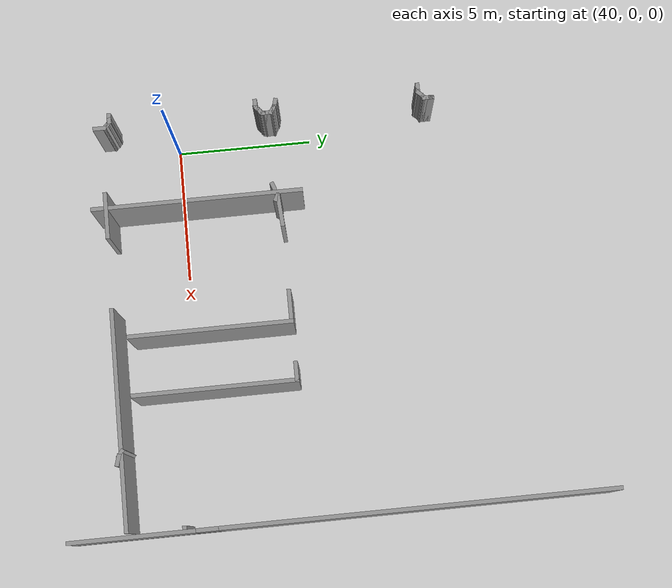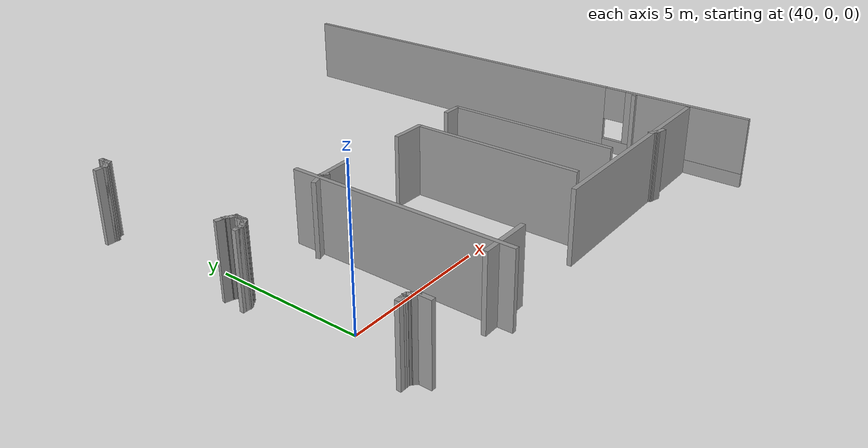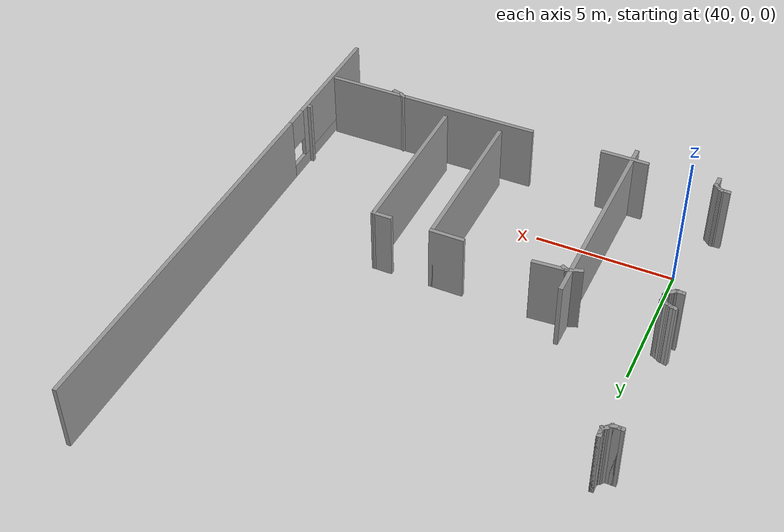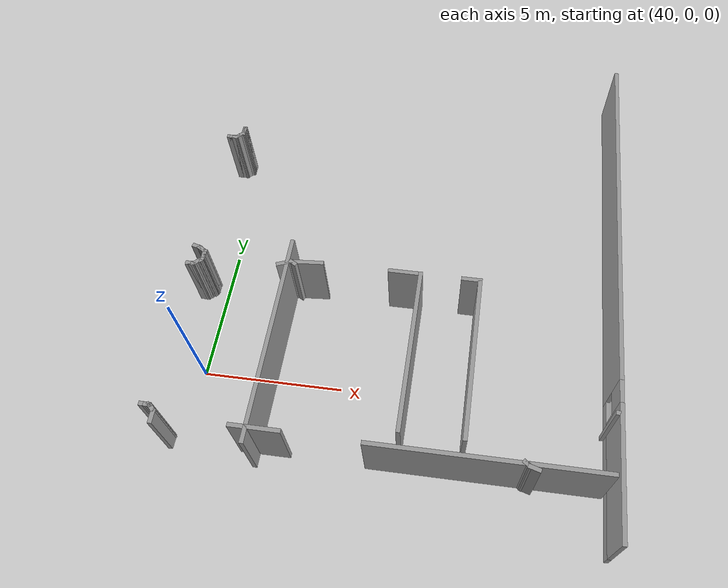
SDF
<sdf version="1.6">
 <model name="draft3">
  <pose>34.2026 -2.81154 0 0 -0 0</pose>
  <link name="Wall_298">
   <pose>20.2448 7.80806 0 0 0 -1.5708</pose>
   <visual name="Wall_298_Visual_0">
    <pose>-2.65337 0 1.25 0 -0 0</pose>
    <geometry><box><size>14.1933 0.15 2.5</size></box></geometry>
    <material>
     <script><uri>file://media/materials/scripts/gazebo.material</uri><name>Gazebo/Grey</name></script>
     <ambient>1 1 1 1</ambient>
    </material>
   </visual>
   <collision name="Wall_298_Collision_0">
    <geometry><box><size>14.1933 0.15 2.5</size></box></geometry>
    <pose>-2.65337 0 1.25 0 -0 0</pose>
   </collision>
   <visual name="Wall_298_Visual_1">
    <pose>7.09663 0 0.25 0 -0 0</pose>
    <geometry><box><size>5.30673 0.15 0.5</size></box></geometry>
    <material>
     <script><uri>file://media/materials/scripts/gazebo.material</uri><name>Gazebo/Grey</name></script>
     <ambient>1 1 1 1</ambient>
    </material>
   </visual>
   <collision name="Wall_298_Collision_1">
    <geometry><box><size>5.30673 0.15 0.5</size></box></geometry>
    <pose>7.09663 0 0.25 0 -0 0</pose>
   </collision>
   <visual name="Wall_298_Visual_2">
    <pose>7.49663 0 1.5 0 -0 0</pose>
    <geometry><box><size>4.50673 0.15 2</size></box></geometry>
    <material>
     <script><uri>file://media/materials/scripts/gazebo.material</uri><name>Gazebo/Grey</name></script>
     <ambient>1 1 1 1</ambient>
    </material>
   </visual>
   <collision name="Wall_298_Collision_2">
    <geometry><box><size>4.50673 0.15 2</size></box></geometry>
    <pose>7.49663 0 1.5 0 -0 0</pose>
   </collision>
   <visual name="Wall_298_Visual_3">
    <pose>4.84327 0 1.9 0 -0 0</pose>
    <geometry><box><size>0.8 0.15 1.2</size></box></geometry>
    <material>
     <script><uri>file://media/materials/scripts/gazebo.material</uri><name>Gazebo/Grey</name></script>
     <ambient>1 1 1 1</ambient>
    </material>
   </visual>
   <collision name="Wall_298_Collision_3">
    <geometry><box><size>0.8 0.15 1.2</size></box></geometry>
    <pose>4.84327 0 1.9 0 -0 0</pose>
   </collision>
  </link>
  <link name="Wall_300">
   <collision name="Wall_300_Collision">
    <geometry><box><size>0.16 0.15 2.5</size></box></geometry>
    <pose>0 0 1.25 0 -0 0</pose>
   </collision>
   <visual name="Wall_300_Visual">
    <pose>0 0 1.25 0 -0 0</pose>
    <geometry><box><size>0.16 0.15 2.5</size></box></geometry>
    <material>
     <script><uri>file://media/materials/scripts/gazebo.material</uri><name>Gazebo/Grey</name></script>
     <ambient>1 1 1 1</ambient>
    </material>
   </visual>
   <pose>20.119 2.19085 0 0 -0 0</pose>
  </link>
  <link name="Wall_303">
   <collision name="Wall_303_Collision">
    <geometry><box><size>7.75 0.15 2.5</size></box></geometry>
    <pose>0 0 1.25 0 -0 0</pose>
   </collision>
   <visual name="Wall_303_Visual">
    <pose>0 0 1.25 0 -0 0</pose>
    <geometry><box><size>7.75 0.15 2.5</size></box></geometry>
    <material>
     <script><uri>file://media/materials/scripts/gazebo.material</uri><name>Gazebo/Grey</name></script>
     <ambient>1 1 1 1</ambient>
    </material>
   </visual>
   <pose>8.38188 3.52871 0 0 0 -1.5708</pose>
  </link>
  <link name="Wall_305">
   <collision name="Wall_305_Collision">
    <geometry><box><size>1.75 0.15 2.5</size></box></geometry>
    <pose>0 0 1.25 0 -0 0</pose>
   </collision>
   <visual name="Wall_305_Visual">
    <pose>0 0 1.25 0 -0 0</pose>
    <geometry><box><size>1.75 0.15 2.5</size></box></geometry>
    <material>
     <script><uri>file://media/materials/scripts/gazebo.material</uri><name>Gazebo/Grey</name></script>
     <ambient>1 1 1 1</ambient>
    </material>
   </visual>
   <pose>8.65596 0.208532 0 0 -0 0</pose>
  </link>
  <link name="Wall_307">
   <collision name="Wall_307_Collision">
    <geometry><box><size>0.322037 0.15 2.5</size></box></geometry>
    <pose>0 0 1.25 0 -0 0</pose>
   </collision>
   <visual name="Wall_307_Visual">
    <pose>0 0 1.25 0 -0 0</pose>
    <geometry><box><size>0.322037 0.15 2.5</size></box></geometry>
    <material>
     <script><uri>file://media/materials/scripts/gazebo.material</uri><name>Gazebo/Grey</name></script>
     <ambient>1 1 1 1</ambient>
    </material>
   </visual>
   <pose>8.58916 6.43869 0 0 -0 2.65195</pose>
  </link>
  <link name="Wall_308">
   <collision name="Wall_308_Collision">
    <geometry><box><size>0.617104 0.15 2.5</size></box></geometry>
    <pose>0 0 1.25 0 -0 0</pose>
   </collision>
   <visual name="Wall_308_Visual">
    <pose>0 0 1.25 0 -0 0</pose>
    <geometry><box><size>0.617104 0.15 2.5</size></box></geometry>
    <material>
     <script><uri>file://media/materials/scripts/gazebo.material</uri><name>Gazebo/Grey</name></script>
     <ambient>1 1 1 1</ambient>
    </material>
   </visual>
   <pose>8.29416 6.39823 0 0 0 -2.78782</pose>
  </link>
  <link name="Wall_312">
   <collision name="Wall_312_Collision">
    <geometry><box><size>0.75 0.15 2.5</size></box></geometry>
    <pose>0 0 1.25 0 -0 0</pose>
   </collision>
   <visual name="Wall_312_Visual">
    <pose>0 0 1.25 0 -0 0</pose>
    <geometry><box><size>0.75 0.15 2.5</size></box></geometry>
    <material>
     <script><uri>file://media/materials/scripts/gazebo.material</uri><name>Gazebo/Grey</name></script>
     <ambient>1 1 1 1</ambient>
    </material>
   </visual>
   <pose>15.0334 6.56006 0 0 -0 0</pose>
  </link>
  <link name="Wall_313">
   <collision name="Wall_313_Collision">
    <geometry><box><size>6 0.15 2.5</size></box></geometry>
    <pose>0 0 1.25 0 -0 0</pose>
   </collision>
   <visual name="Wall_313_Visual">
    <pose>0 0 1.25 0 -0 0</pose>
    <geometry><box><size>6 0.15 2.5</size></box></geometry>
    <material>
     <script><uri>file://media/materials/scripts/gazebo.material</uri><name>Gazebo/Grey</name></script>
     <ambient>1 1 1 1</ambient>
    </material>
   </visual>
   <pose>15.3334 3.63506 0 0 0 -1.5708</pose>
  </link>
  <link name="Wall_315">
   <collision name="Wall_315_Collision">
    <geometry><box><size>1.25 0.15 2.5</size></box></geometry>
    <pose>0 0 1.25 0 -0 0</pose>
   </collision>
   <visual name="Wall_315_Visual">
    <pose>0 0 1.25 0 -0 0</pose>
    <geometry><box><size>1.25 0.15 2.5</size></box></geometry>
    <material>
     <script><uri>file://media/materials/scripts/gazebo.material</uri><name>Gazebo/Grey</name></script>
     <ambient>1 1 1 1</ambient>
    </material>
   </visual>
   <pose>12.6538 6.56006 0 0 -0 0</pose>
  </link>
  <link name="Wall_316">
   <collision name="Wall_316_Collision">
    <geometry><box><size>6 0.15 2.5</size></box></geometry>
    <pose>0 0 1.25 0 -0 0</pose>
   </collision>
   <visual name="Wall_316_Visual">
    <pose>0 0 1.25 0 -0 0</pose>
    <geometry><box><size>6 0.15 2.5</size></box></geometry>
    <material>
     <script><uri>file://media/materials/scripts/gazebo.material</uri><name>Gazebo/Grey</name></script>
     <ambient>1 1 1 1</ambient>
    </material>
   </visual>
   <pose>13.2038 3.63506 0 0 0 -1.5708</pose>
  </link>
  <link name="Wall_318">
   <collision name="Wall_318_Collision">
    <geometry><box><size>1.25297 0.15 2.5</size></box></geometry>
    <pose>0 0 1.25 0 -0 0</pose>
   </collision>
   <visual name="Wall_318_Visual">
    <pose>0 0 1.25 0 -0 0</pose>
    <geometry><box><size>1.25297 0.15 2.5</size></box></geometry>
    <material>
     <script><uri>file://media/materials/scripts/gazebo.material</uri><name>Gazebo/Grey</name></script>
     <ambient>1 1 1 1</ambient>
    </material>
   </visual>
   <pose>9.06325 6.5196 0 0 -0 0.073423</pose>
  </link>
  <link name="Wall_320">
   <collision name="Wall_320_Collision">
    <geometry><box><size>8 0.15 2.5</size></box></geometry>
    <pose>0 0 1.25 0 -0 0</pose>
   </collision>
   <visual name="Wall_320_Visual">
    <pose>0 0 1.25 0 -0 0</pose>
    <geometry><box><size>8 0.15 2.5</size></box></geometry>
    <material>
     <script><uri>file://media/materials/scripts/gazebo.material</uri><name>Gazebo/Grey</name></script>
     <ambient>1 1 1 1</ambient>
    </material>
   </visual>
   <pose>16.1097 0.168076 0 0 -0 0</pose>
  </link>
  <link name="Wall_334">
   <collision name="Wall_334_Collision">
    <geometry><box><size>0.444521 0.15 2.5</size></box></geometry>
    <pose>0 0 1.25 0 -0 0</pose>
   </collision>
   <visual name="Wall_334_Visual">
    <pose>0 0 1.25 0 -0 0</pose>
    <geometry><box><size>0.444521 0.15 2.5</size></box></geometry>
    <material>
     <script><uri>file://media/materials/scripts/gazebo.material</uri><name>Gazebo/Grey</name></script>
     <ambient>1 1 1 1</ambient>
    </material>
   </visual>
   <pose>17.5451 0.04671 0 0 -0 2.86329</pose>
  </link>
  <link name="Wall_335">
   <collision name="Wall_335_Collision">
    <geometry><box><size>0.352278 0.15 2.5</size></box></geometry>
    <pose>0 0 1.25 0 -0 0</pose>
   </collision>
   <visual name="Wall_335_Visual">
    <pose>0 0 1.25 0 -0 0</pose>
    <geometry><box><size>0.352278 0.15 2.5</size></box></geometry>
    <material>
     <script><uri>file://media/materials/scripts/gazebo.material</uri><name>Gazebo/Grey</name></script>
     <ambient>1 1 1 1</ambient>
    </material>
   </visual>
   <pose>17.3226 0.147848 0 0 -0 2.49809</pose>
  </link>
  <link name="Wall_361">
   <collision name="Wall_361_Collision">
    <geometry><box><size>0.25 0.15 2.5</size></box></geometry>
    <pose>0 0 1.25 0 -0 0</pose>
   </collision>
   <visual name="Wall_361_Visual">
    <pose>0 0 1.25 0 -0 0</pose>
    <geometry><box><size>0.25 0.15 2.5</size></box></geometry>
    <material>
     <script><uri>file://media/materials/scripts/gazebo.material</uri><name>Gazebo/Grey</name></script>
     <ambient>1 1 1 1</ambient>
    </material>
   </visual>
   <pose>4.88579 5.95654 0 0 -0 0</pose>
  </link>
  <link name="Wall_362">
   <collision name="Wall_362_Collision">
    <geometry><box><size>0.25 0.15 2.5</size></box></geometry>
    <pose>0 0 1.25 0 -0 0</pose>
   </collision>
   <visual name="Wall_362_Visual">
    <pose>0 0 1.25 0 -0 0</pose>
    <geometry><box><size>0.25 0.15 2.5</size></box></geometry>
    <material>
     <script><uri>file://media/materials/scripts/gazebo.material</uri><name>Gazebo/Grey</name></script>
     <ambient>1 1 1 1</ambient>
    </material>
   </visual>
   <pose>4.98579 5.95654 0 0 -0 0</pose>
  </link>
  <link name="Wall_363">
   <collision name="Wall_363_Collision">
    <geometry><box><size>0.25 0.15 2.5</size></box></geometry>
    <pose>0 0 1.25 0 -0 0</pose>
   </collision>
   <visual name="Wall_363_Visual">
    <pose>0 0 1.25 0 -0 0</pose>
    <geometry><box><size>0.25 0.15 2.5</size></box></geometry>
    <material>
     <script><uri>file://media/materials/scripts/gazebo.material</uri><name>Gazebo/Grey</name></script>
     <ambient>1 1 1 1</ambient>
    </material>
   </visual>
   <pose>5.07909 5.98154 0 0 -0 0.523599</pose>
  </link>
  <link name="Wall_364">
   <collision name="Wall_364_Collision">
    <geometry><box><size>0.25 0.15 2.5</size></box></geometry>
    <pose>0 0 1.25 0 -0 0</pose>
   </collision>
   <visual name="Wall_364_Visual">
    <pose>0 0 1.25 0 -0 0</pose>
    <geometry><box><size>0.25 0.15 2.5</size></box></geometry>
    <material>
     <script><uri>file://media/materials/scripts/gazebo.material</uri><name>Gazebo/Grey</name></script>
     <ambient>1 1 1 1</ambient>
    </material>
   </visual>
   <pose>5.15775 6.0419 0 0 -0 0.785398</pose>
  </link>
  <link name="Wall_365">
   <collision name="Wall_365_Collision">
    <geometry><box><size>0.25 0.15 2.5</size></box></geometry>
    <pose>0 0 1.25 0 -0 0</pose>
   </collision>
   <visual name="Wall_365_Visual">
    <pose>0 0 1.25 0 -0 0</pose>
    <geometry><box><size>0.25 0.15 2.5</size></box></geometry>
    <material>
     <script><uri>file://media/materials/scripts/gazebo.material</uri><name>Gazebo/Grey</name></script>
     <ambient>1 1 1 1</ambient>
    </material>
   </visual>
   <pose>5.2364 6.10225 0 0 -0 0.523599</pose>
  </link>
  <link name="Wall_366">
   <collision name="Wall_366_Collision">
    <geometry><box><size>0.25 0.15 2.5</size></box></geometry>
    <pose>0 0 1.25 0 -0 0</pose>
   </collision>
   <visual name="Wall_366_Visual">
    <pose>0 0 1.25 0 -0 0</pose>
    <geometry><box><size>0.25 0.15 2.5</size></box></geometry>
    <material>
     <script><uri>file://media/materials/scripts/gazebo.material</uri><name>Gazebo/Grey</name></script>
     <ambient>1 1 1 1</ambient>
    </material>
   </visual>
   <pose>5.30471 6.17055 0 0 -0 1.0472</pose>
  </link>
  <link name="Wall_367">
   <collision name="Wall_367_Collision">
    <geometry><box><size>0.25 0.15 2.5</size></box></geometry>
    <pose>0 0 1.25 0 -0 0</pose>
   </collision>
   <visual name="Wall_367_Visual">
    <pose>0 0 1.25 0 -0 0</pose>
    <geometry><box><size>0.25 0.15 2.5</size></box></geometry>
    <material>
     <script><uri>file://media/materials/scripts/gazebo.material</uri><name>Gazebo/Grey</name></script>
     <ambient>1 1 1 1</ambient>
    </material>
   </visual>
   <pose>5.3297 6.26386 0 0 -0 1.5708</pose>
  </link>
  <link name="Wall_368">
   <collision name="Wall_368_Collision">
    <geometry><box><size>0.25 0.15 2.5</size></box></geometry>
    <pose>0 0 1.25 0 -0 0</pose>
   </collision>
   <visual name="Wall_368_Visual">
    <pose>0 0 1.25 0 -0 0</pose>
    <geometry><box><size>0.25 0.15 2.5</size></box></geometry>
    <material>
     <script><uri>file://media/materials/scripts/gazebo.material</uri><name>Gazebo/Grey</name></script>
     <ambient>1 1 1 1</ambient>
    </material>
   </visual>
   <pose>5.3297 6.36386 0 0 -0 1.5708</pose>
  </link>
  <link name="Wall_369">
   <collision name="Wall_369_Collision">
    <geometry><box><size>0.25 0.15 2.5</size></box></geometry>
    <pose>0 0 1.25 0 -0 0</pose>
   </collision>
   <visual name="Wall_369_Visual">
    <pose>0 0 1.25 0 -0 0</pose>
    <geometry><box><size>0.25 0.15 2.5</size></box></geometry>
    <material>
     <script><uri>file://media/materials/scripts/gazebo.material</uri><name>Gazebo/Grey</name></script>
     <ambient>1 1 1 1</ambient>
    </material>
   </visual>
   <pose>5.3297 6.46385 0 0 -0 1.5708</pose>
  </link>
  <link name="Wall_370">
   <collision name="Wall_370_Collision">
    <geometry><box><size>0.25 0.15 2.5</size></box></geometry>
    <pose>0 0 1.25 0 -0 0</pose>
   </collision>
   <visual name="Wall_370_Visual">
    <pose>0 0 1.25 0 -0 0</pose>
    <geometry><box><size>0.25 0.15 2.5</size></box></geometry>
    <material>
     <script><uri>file://media/materials/scripts/gazebo.material</uri><name>Gazebo/Grey</name></script>
     <ambient>1 1 1 1</ambient>
    </material>
   </visual>
   <pose>5.2864 6.53885 0 0 -0 2.61799</pose>
  </link>
  <link name="Wall_371">
   <collision name="Wall_371_Collision">
    <geometry><box><size>0.25 0.15 2.5</size></box></geometry>
    <pose>0 0 1.25 0 -0 0</pose>
   </collision>
   <visual name="Wall_371_Visual">
    <pose>0 0 1.25 0 -0 0</pose>
    <geometry><box><size>0.25 0.15 2.5</size></box></geometry>
    <material>
     <script><uri>file://media/materials/scripts/gazebo.material</uri><name>Gazebo/Grey</name></script>
     <ambient>1 1 1 1</ambient>
    </material>
   </visual>
   <pose>5.1998 6.58885 0 0 -0 2.61799</pose>
  </link>
  <link name="Wall_372">
   <collision name="Wall_372_Collision">
    <geometry><box><size>0.25 0.15 2.5</size></box></geometry>
    <pose>0 0 1.25 0 -0 0</pose>
   </collision>
   <visual name="Wall_372_Visual">
    <pose>0 0 1.25 0 -0 0</pose>
    <geometry><box><size>0.25 0.15 2.5</size></box></geometry>
    <material>
     <script><uri>file://media/materials/scripts/gazebo.material</uri><name>Gazebo/Grey</name></script>
     <ambient>1 1 1 1</ambient>
    </material>
   </visual>
   <pose>5.1132 6.63886 0 0 -0 2.61799</pose>
  </link>
  <link name="Wall_373">
   <collision name="Wall_373_Collision">
    <geometry><box><size>0.25 0.15 2.5</size></box></geometry>
    <pose>0 0 1.25 0 -0 0</pose>
   </collision>
   <visual name="Wall_373_Visual">
    <pose>0 0 1.25 0 -0 0</pose>
    <geometry><box><size>0.25 0.15 2.5</size></box></geometry>
    <material>
     <script><uri>file://media/materials/scripts/gazebo.material</uri><name>Gazebo/Grey</name></script>
     <ambient>1 1 1 1</ambient>
    </material>
   </visual>
   <pose>5.0216 6.6768 0 0 -0 2.87979</pose>
  </link>
  <link name="Wall_374">
   <collision name="Wall_374_Collision">
    <geometry><box><size>0.25 0.15 2.5</size></box></geometry>
    <pose>0 0 1.25 0 -0 0</pose>
   </collision>
   <visual name="Wall_374_Visual">
    <pose>0 0 1.25 0 -0 0</pose>
    <geometry><box><size>0.25 0.15 2.5</size></box></geometry>
    <material>
     <script><uri>file://media/materials/scripts/gazebo.material</uri><name>Gazebo/Grey</name></script>
     <ambient>1 1 1 1</ambient>
    </material>
   </visual>
   <pose>4.92501 6.70268 0 0 -0 2.87979</pose>
  </link>
  <link name="Wall_427">
   <collision name="Wall_427_Collision">
    <geometry><box><size>0.25 0.15 2.5</size></box></geometry>
    <pose>0 0 1.25 0 -0 0</pose>
   </collision>
   <visual name="Wall_427_Visual">
    <pose>0 0 1.25 0 -0 0</pose>
    <geometry><box><size>0.25 0.15 2.5</size></box></geometry>
    <material>
     <script><uri>file://media/materials/scripts/gazebo.material</uri><name>Gazebo/Grey</name></script>
     <ambient>1 1 1 1</ambient>
    </material>
   </visual>
   <pose>4.85242 12.0082 0 0 -0 0</pose>
  </link>
  <link name="Wall_428">
   <collision name="Wall_428_Collision">
    <geometry><box><size>0.25 0.15 2.5</size></box></geometry>
    <pose>0 0 1.25 0 -0 0</pose>
   </collision>
   <visual name="Wall_428_Visual">
    <pose>0 0 1.25 0 -0 0</pose>
    <geometry><box><size>0.25 0.15 2.5</size></box></geometry>
    <material>
     <script><uri>file://media/materials/scripts/gazebo.material</uri><name>Gazebo/Grey</name></script>
     <ambient>1 1 1 1</ambient>
    </material>
   </visual>
   <pose>4.95243 12.0082 0 0 -0 0</pose>
  </link>
  <link name="Wall_429">
   <collision name="Wall_429_Collision">
    <geometry><box><size>0.25 0.15 2.5</size></box></geometry>
    <pose>0 0 1.25 0 -0 0</pose>
   </collision>
   <visual name="Wall_429_Visual">
    <pose>0 0 1.25 0 -0 0</pose>
    <geometry><box><size>0.25 0.15 2.5</size></box></geometry>
    <material>
     <script><uri>file://media/materials/scripts/gazebo.material</uri><name>Gazebo/Grey</name></script>
     <ambient>1 1 1 1</ambient>
    </material>
   </visual>
   <pose>5.05243 12.0082 0 0 -0 0</pose>
  </link>
  <link name="Wall_430">
   <collision name="Wall_430_Collision">
    <geometry><box><size>0.25 0.15 2.5</size></box></geometry>
    <pose>0 0 1.25 0 -0 0</pose>
   </collision>
   <visual name="Wall_430_Visual">
    <pose>0 0 1.25 0 -0 0</pose>
    <geometry><box><size>0.25 0.15 2.5</size></box></geometry>
    <material>
     <script><uri>file://media/materials/scripts/gazebo.material</uri><name>Gazebo/Grey</name></script>
     <ambient>1 1 1 1</ambient>
    </material>
   </visual>
   <pose>5.13778 12.0436 0 0 -0 0.785398</pose>
  </link>
  <link name="Wall_431">
   <collision name="Wall_431_Collision">
    <geometry><box><size>0.25 0.15 2.5</size></box></geometry>
    <pose>0 0 1.25 0 -0 0</pose>
   </collision>
   <visual name="Wall_431_Visual">
    <pose>0 0 1.25 0 -0 0</pose>
    <geometry><box><size>0.25 0.15 2.5</size></box></geometry>
    <material>
     <script><uri>file://media/materials/scripts/gazebo.material</uri><name>Gazebo/Grey</name></script>
     <ambient>1 1 1 1</ambient>
    </material>
   </visual>
   <pose>5.20849 12.1143 0 0 -0 0.785398</pose>
  </link>
  <link name="Wall_432">
   <collision name="Wall_432_Collision">
    <geometry><box><size>0.25 0.15 2.5</size></box></geometry>
    <pose>0 0 1.25 0 -0 0</pose>
   </collision>
   <visual name="Wall_432_Visual">
    <pose>0 0 1.25 0 -0 0</pose>
    <geometry><box><size>0.25 0.15 2.5</size></box></geometry>
    <material>
     <script><uri>file://media/materials/scripts/gazebo.material</uri><name>Gazebo/Grey</name></script>
     <ambient>1 1 1 1</ambient>
    </material>
   </visual>
   <pose>5.28715 12.1746 0 0 -0 0.523599</pose>
  </link>
  <link name="Wall_433">
   <collision name="Wall_433_Collision">
    <geometry><box><size>0.25 0.15 2.5</size></box></geometry>
    <pose>0 0 1.25 0 -0 0</pose>
   </collision>
   <visual name="Wall_433_Visual">
    <pose>0 0 1.25 0 -0 0</pose>
    <geometry><box><size>0.25 0.15 2.5</size></box></geometry>
    <material>
     <script><uri>file://media/materials/scripts/gazebo.material</uri><name>Gazebo/Grey</name></script>
     <ambient>1 1 1 1</ambient>
    </material>
   </visual>
   <pose>5.33045 12.2496 0 0 -0 1.5708</pose>
  </link>
  <link name="Wall_434">
   <collision name="Wall_434_Collision">
    <geometry><box><size>0.25 0.15 2.5</size></box></geometry>
    <pose>0 0 1.25 0 -0 0</pose>
   </collision>
   <visual name="Wall_434_Visual">
    <pose>0 0 1.25 0 -0 0</pose>
    <geometry><box><size>0.25 0.15 2.5</size></box></geometry>
    <material>
     <script><uri>file://media/materials/scripts/gazebo.material</uri><name>Gazebo/Grey</name></script>
     <ambient>1 1 1 1</ambient>
    </material>
   </visual>
   <pose>5.33045 12.3496 0 0 -0 1.5708</pose>
  </link>
  <link name="Wall_435">
   <collision name="Wall_435_Collision">
    <geometry><box><size>0.25 0.15 2.5</size></box></geometry>
    <pose>0 0 1.25 0 -0 0</pose>
   </collision>
   <visual name="Wall_435_Visual">
    <pose>0 0 1.25 0 -0 0</pose>
    <geometry><box><size>0.25 0.15 2.5</size></box></geometry>
    <material>
     <script><uri>file://media/materials/scripts/gazebo.material</uri><name>Gazebo/Grey</name></script>
     <ambient>1 1 1 1</ambient>
    </material>
   </visual>
   <pose>5.33045 12.4496 0 0 -0 1.5708</pose>
  </link>
  <link name="Wall_436">
   <collision name="Wall_436_Collision">
    <geometry><box><size>0.25 0.15 2.5</size></box></geometry>
    <pose>0 0 1.25 0 -0 0</pose>
   </collision>
   <visual name="Wall_436_Visual">
    <pose>0 0 1.25 0 -0 0</pose>
    <geometry><box><size>0.25 0.15 2.5</size></box></geometry>
    <material>
     <script><uri>file://media/materials/scripts/gazebo.material</uri><name>Gazebo/Grey</name></script>
     <ambient>1 1 1 1</ambient>
    </material>
   </visual>
   <pose>5.33045 12.4496 0 0 0 -1.5708</pose>
  </link>
  <link name="Wall_437">
   <collision name="Wall_437_Collision">
    <geometry><box><size>0.25 0.15 2.5</size></box></geometry>
    <pose>0 0 1.25 0 -0 0</pose>
   </collision>
   <visual name="Wall_437_Visual">
    <pose>0 0 1.25 0 -0 0</pose>
    <geometry><box><size>0.25 0.15 2.5</size></box></geometry>
    <material>
     <script><uri>file://media/materials/scripts/gazebo.material</uri><name>Gazebo/Grey</name></script>
     <ambient>1 1 1 1</ambient>
    </material>
   </visual>
   <pose>5.33045 12.4496 0 0 -0 1.5708</pose>
  </link>
  <link name="Wall_498">
   <collision name="Wall_498_Collision">
    <geometry><box><size>0.5 0.15 2.5</size></box></geometry>
    <pose>0 0 1.25 0 -0 0</pose>
   </collision>
   <visual name="Wall_498_Visual">
    <pose>0 0 1.25 0 -0 0</pose>
    <geometry><box><size>0.5 0.15 2.5</size></box></geometry>
    <material>
     <script><uri>file://media/materials/scripts/gazebo.material</uri><name>Gazebo/Grey</name></script>
     <ambient>1 1 1 1</ambient>
    </material>
   </visual>
   <pose>5.33221 0.174645 0 0 -0 1.5708</pose>
  </link>
  <link name="Wall_499">
   <collision name="Wall_499_Collision">
    <geometry><box><size>0.25 0.15 2.5</size></box></geometry>
    <pose>0 0 1.25 0 -0 0</pose>
   </collision>
   <visual name="Wall_499_Visual">
    <pose>0 0 1.25 0 -0 0</pose>
    <geometry><box><size>0.25 0.15 2.5</size></box></geometry>
    <material>
     <script><uri>file://media/materials/scripts/gazebo.material</uri><name>Gazebo/Grey</name></script>
     <ambient>1 1 1 1</ambient>
    </material>
   </visual>
   <pose>5.29685 0.385001 0 0 -0 2.35619</pose>
  </link>
  <link name="Wall_500">
   <collision name="Wall_500_Collision">
    <geometry><box><size>0.25 0.15 2.5</size></box></geometry>
    <pose>0 0 1.25 0 -0 0</pose>
   </collision>
   <visual name="Wall_500_Visual">
    <pose>0 0 1.25 0 -0 0</pose>
    <geometry><box><size>0.25 0.15 2.5</size></box></geometry>
    <material>
     <script><uri>file://media/materials/scripts/gazebo.material</uri><name>Gazebo/Grey</name></script>
     <ambient>1 1 1 1</ambient>
    </material>
   </visual>
   <pose>5.22614 0.455711 0 0 -0 2.35619</pose>
  </link>
  <link name="Wall_501">
   <collision name="Wall_501_Collision">
    <geometry><box><size>0.25 0.15 2.5</size></box></geometry>
    <pose>0 0 1.25 0 -0 0</pose>
   </collision>
   <visual name="Wall_501_Visual">
    <pose>0 0 1.25 0 -0 0</pose>
    <geometry><box><size>0.25 0.15 2.5</size></box></geometry>
    <material>
     <script><uri>file://media/materials/scripts/gazebo.material</uri><name>Gazebo/Grey</name></script>
     <ambient>1 1 1 1</ambient>
    </material>
   </visual>
   <pose>5.14749 0.516067 0 0 -0 2.61799</pose>
  </link>
  <link name="Wall_502">
   <collision name="Wall_502_Collision">
    <geometry><box><size>0.25 0.15 2.5</size></box></geometry>
    <pose>0 0 1.25 0 -0 0</pose>
   </collision>
   <visual name="Wall_502_Visual">
    <pose>0 0 1.25 0 -0 0</pose>
    <geometry><box><size>0.25 0.15 2.5</size></box></geometry>
    <material>
     <script><uri>file://media/materials/scripts/gazebo.material</uri><name>Gazebo/Grey</name></script>
     <ambient>1 1 1 1</ambient>
    </material>
   </visual>
   <pose>5.05418 0.541067 0 0 -0 3.14159</pose>
  </link>
  <link name="Wall_503">
   <collision name="Wall_503_Collision">
    <geometry><box><size>0.297981 0.15 2.5</size></box></geometry>
    <pose>0 0 1.25 0 -0 0</pose>
   </collision>
   <visual name="Wall_503_Visual">
    <pose>0 0 1.25 0 -0 0</pose>
    <geometry><box><size>0.297981 0.15 2.5</size></box></geometry>
    <material>
     <script><uri>file://media/materials/scripts/gazebo.material</uri><name>Gazebo/Grey</name></script>
     <ambient>1 1 1 1</ambient>
    </material>
   </visual>
   <pose>4.9302 0.54176 0 0 -0 3.13222</pose>
  </link>
  <static>1</static>
 </model>
</sdf>
